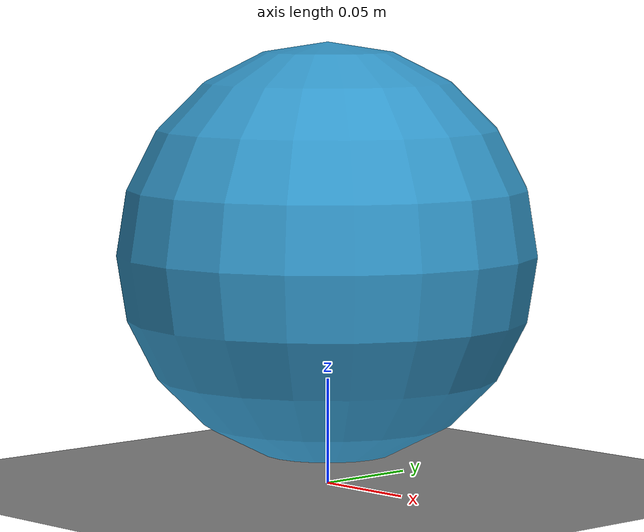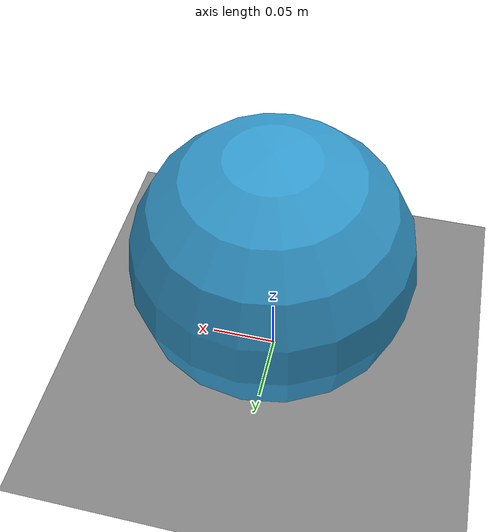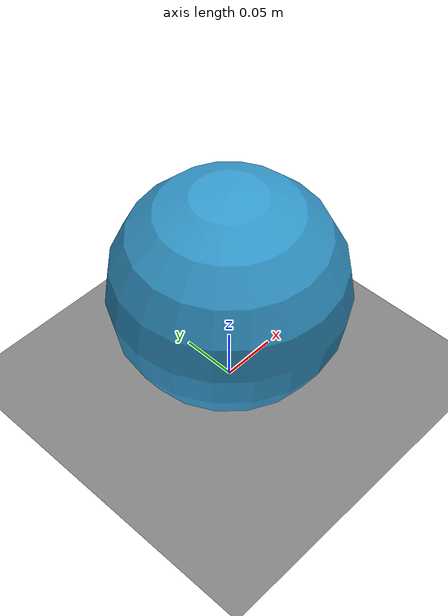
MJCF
<mujoco model="jumping_ball">
    <option timestep="0.002"
            integrator="implicitfast"
            gravity="0 0 -9.81"
            iterations="50"/>

    <worldbody>

        <!-- Ground -->
        <geom name="ground"
              type="plane"
              size="2 2 0.1"/>

        <!-- Ball -->
        <body name="ball" pos="0 0 0.11">
            <freejoint/>

            <!-- Outer shell -->
            <geom name="shell"
                  type="sphere"
                  size="0.10"
                  mass="1.0"
                  rgba="0.2 0.6 0.8 1"/>

            <!-- Internal sliding mass -->
            <body name="piston">

                <joint name="slider"
                       type="slide"
                       axis="0 0 1"
                       limited="true"
                       range="-0.03 0.03"
                       stiffness="5000"
                       damping="10"/>

                <geom name="mass"
                      type="sphere"
                      size="0.02"
                      mass="0.2"
                      rgba="1 0 0 1"
                      contype="0"
                      conaffinity="0"/>

            </body>

        </body>

    </worldbody>

    <actuator>
        <motor joint="slider"
               gear="300"
               ctrlrange="-1 1"/>
    </actuator>

</mujoco>
